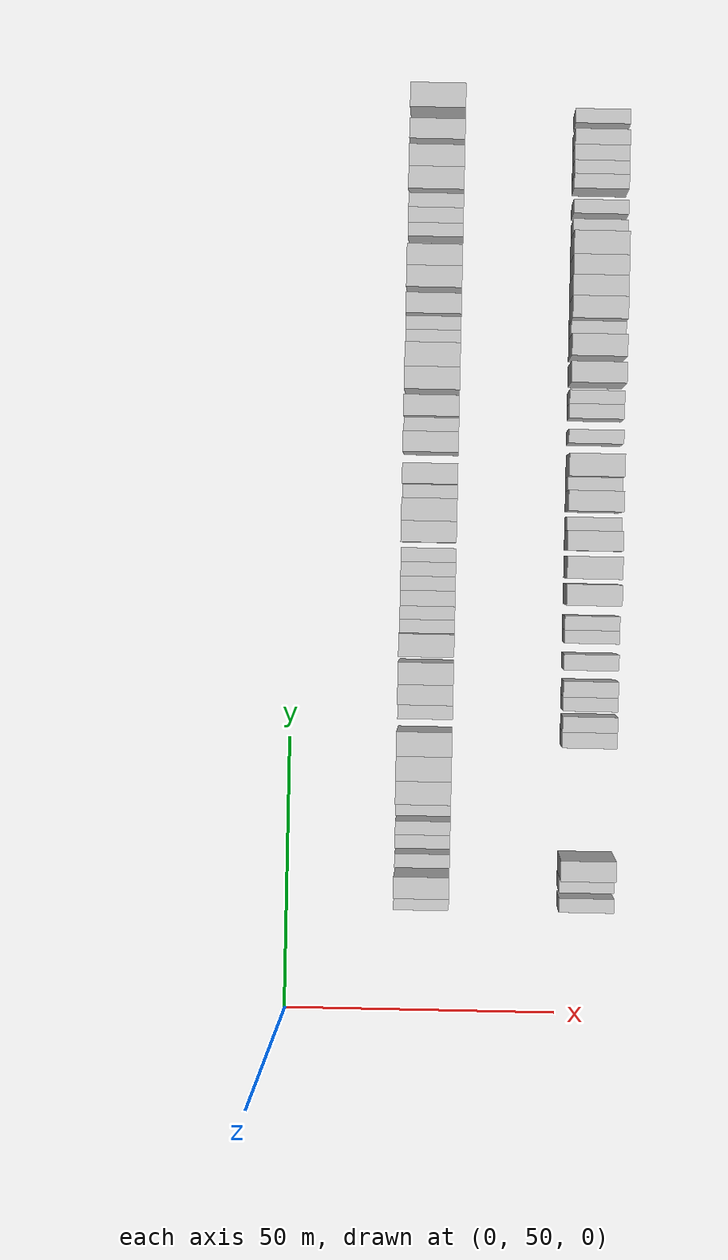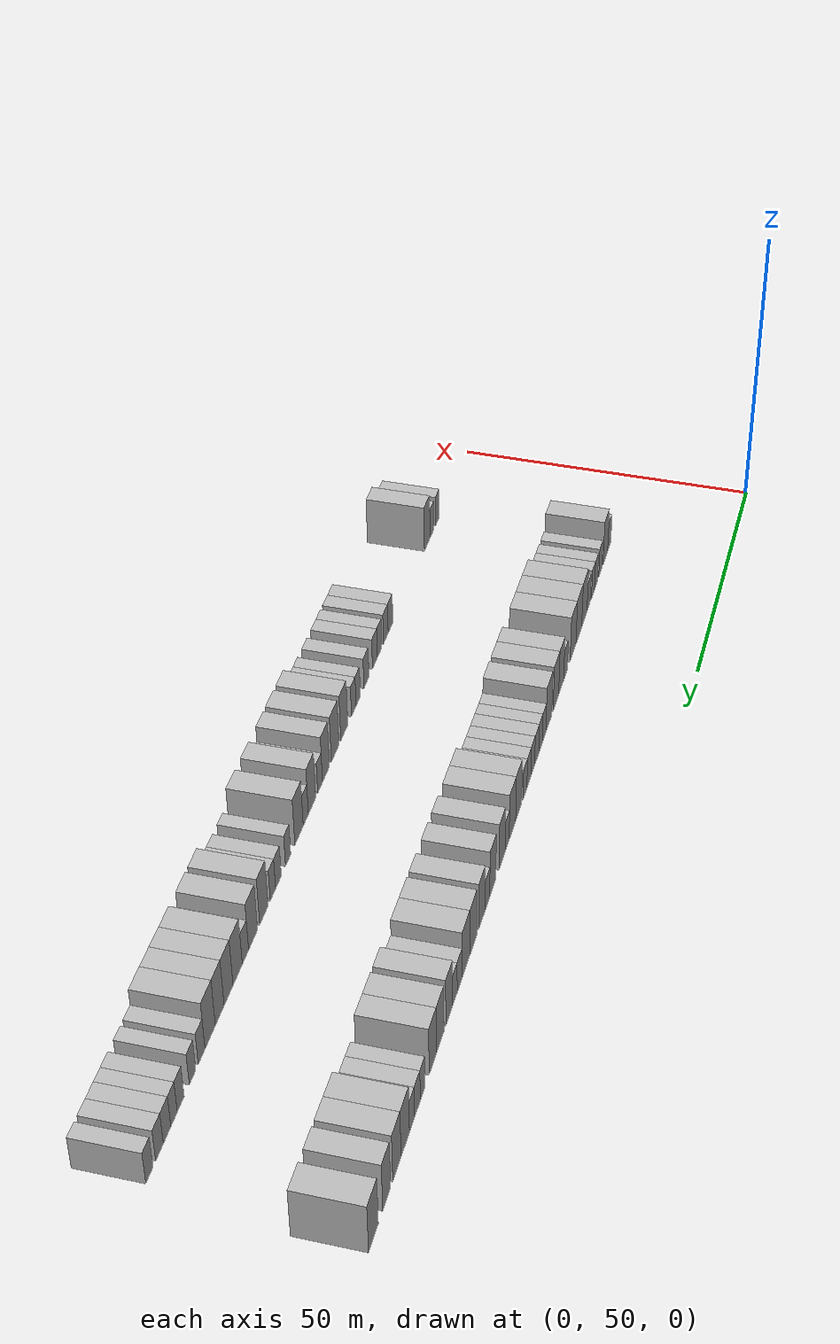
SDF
<sdf version="1.6">
 <world name="default">
  <model name="building_137">
   <static>1</static>
   <pose>25.0000 71.2663 0 0.000000 0.000000 0.000000</pose>
   <link name="link">
    <pose>0 0 3.00 0 0 0</pose>
    <collision name="collision"><geometry><box><size>10.0000 2.7527 6.0000</size></box></geometry></collision>
    <visual name="visual">
     <cast_shadows>0</cast_shadows>
     <geometry><box><size>10.0000 2.7527 6.0000</size></box></geometry>
     <material>
      <script>
       <uri>model://HANNAS_wall/materials/scripts</uri>
       <uri>model://HANNAS_wall/materials/textures</uri>
       <name>vrc/HANNAS_wall</name>
      </script>
     </material>
    </visual>
   </link>
  </model>
  <model name="building_138">
   <static>1</static>
   <pose>25.0000 74.5992 0 0.000000 0.000000 0.000000</pose>
   <link name="link">
    <pose>0 0 4.50 0 0 0</pose>
    <collision name="collision"><geometry><box><size>10.0000 3.9130 9.0000</size></box></geometry></collision>
    <visual name="visual">
     <cast_shadows>0</cast_shadows>
     <geometry><box><size>10.0000 3.9130 9.0000</size></box></geometry>
     <material>
      <script>
       <uri>model://HANNAS_wall/materials/scripts</uri>
       <uri>model://HANNAS_wall/materials/textures</uri>
       <name>vrc/HANNAS_wall</name>
      </script>
     </material>
    </visual>
   </link>
  </model>
  <model name="building_139">
   <static>1</static>
   <pose>25.0000 78.8195 0 0.000000 0.000000 0.000000</pose>
   <link name="link">
    <pose>0 0 3.00 0 0 0</pose>
    <collision name="collision"><geometry><box><size>10.0000 2.5276 6.0000</size></box></geometry></collision>
    <visual name="visual">
     <cast_shadows>0</cast_shadows>
     <geometry><box><size>10.0000 2.5276 6.0000</size></box></geometry>
     <material>
      <script>
       <uri>model://HANNAS_wall/materials/scripts</uri>
       <uri>model://HANNAS_wall/materials/textures</uri>
       <name>vrc/HANNAS_wall</name>
      </script>
     </material>
    </visual>
   </link>
  </model>
  <model name="building_140">
   <static>1</static>
   <pose>25.0000 82.3091 0 0.000000 0.000000 0.000000</pose>
   <link name="link">
    <pose>0 0 3.00 0 0 0</pose>
    <collision name="collision"><geometry><box><size>10.0000 2.4515 6.0000</size></box></geometry></collision>
    <visual name="visual">
     <cast_shadows>0</cast_shadows>
     <geometry><box><size>10.0000 2.4515 6.0000</size></box></geometry>
     <material>
      <script>
       <uri>model://HANNAS_wall/materials/scripts</uri>
       <uri>model://HANNAS_wall/materials/textures</uri>
       <name>vrc/HANNAS_wall</name>
      </script>
     </material>
    </visual>
   </link>
  </model>
  <model name="building_141">
   <static>1</static>
   <pose>25.0000 84.7775 0 0.000000 0.000000 0.000000</pose>
   <link name="link">
    <pose>0 0 3.00 0 0 0</pose>
    <collision name="collision"><geometry><box><size>10.0000 2.4853 6.0000</size></box></geometry></collision>
    <visual name="visual">
     <cast_shadows>0</cast_shadows>
     <geometry><box><size>10.0000 2.4853 6.0000</size></box></geometry>
     <material>
      <script>
       <uri>model://HANNAS_wall/materials/scripts</uri>
       <uri>model://HANNAS_wall/materials/textures</uri>
       <name>vrc/HANNAS_wall</name>
      </script>
     </material>
    </visual>
   </link>
  </model>
  <model name="building_142">
   <static>1</static>
   <pose>25.0000 88.2631 0 0.000000 0.000000 0.000000</pose>
   <link name="link">
    <pose>0 0 3.00 0 0 0</pose>
    <collision name="collision"><geometry><box><size>10.0000 2.4859 6.0000</size></box></geometry></collision>
    <visual name="visual">
     <cast_shadows>0</cast_shadows>
     <geometry><box><size>10.0000 2.4859 6.0000</size></box></geometry>
     <material>
      <script>
       <uri>model://HANNAS_wall/materials/scripts</uri>
       <uri>model://HANNAS_wall/materials/textures</uri>
       <name>vrc/HANNAS_wall</name>
      </script>
     </material>
    </visual>
   </link>
  </model>
  <model name="building_143">
   <static>1</static>
   <pose>25.0000 91.5950 0 0.000000 0.000000 0.000000</pose>
   <link name="link">
    <pose>0 0 4.50 0 0 0</pose>
    <collision name="collision"><geometry><box><size>10.0000 4.1779 9.0000</size></box></geometry></collision>
    <visual name="visual">
     <cast_shadows>0</cast_shadows>
     <geometry><box><size>10.0000 4.1779 9.0000</size></box></geometry>
     <material>
      <script>
       <uri>model://HANNAS_wall/materials/scripts</uri>
       <uri>model://HANNAS_wall/materials/textures</uri>
       <name>vrc/HANNAS_wall</name>
      </script>
     </material>
    </visual>
   </link>
  </model>
  <model name="building_144">
   <static>1</static>
   <pose>25.0000 95.9131 0 0.000000 0.000000 0.000000</pose>
   <link name="link">
    <pose>0 0 4.50 0 0 0</pose>
    <collision name="collision"><geometry><box><size>10.0000 4.4583 9.0000</size></box></geometry></collision>
    <visual name="visual">
     <cast_shadows>0</cast_shadows>
     <geometry><box><size>10.0000 4.4583 9.0000</size></box></geometry>
     <material>
      <script>
       <uri>model://HANNAS_wall/materials/scripts</uri>
       <uri>model://HANNAS_wall/materials/textures</uri>
       <name>vrc/HANNAS_wall</name>
      </script>
     </material>
    </visual>
   </link>
  </model>
  <model name="building_145">
   <static>1</static>
   <pose>25.0000 100.3467 0 0.000000 0.000000 0.000000</pose>
   <link name="link">
    <pose>0 0 4.50 0 0 0</pose>
    <collision name="collision"><geometry><box><size>10.0000 4.4088 9.0000</size></box></geometry></collision>
    <visual name="visual">
     <cast_shadows>0</cast_shadows>
     <geometry><box><size>10.0000 4.4088 9.0000</size></box></geometry>
     <material>
      <script>
       <uri>model://HANNAS_wall/materials/scripts</uri>
       <uri>model://HANNAS_wall/materials/textures</uri>
       <name>vrc/HANNAS_wall</name>
      </script>
     </material>
    </visual>
   </link>
  </model>
  <model name="building_146">
   <static>1</static>
   <pose>25.0000 105.9665 0 0.000000 0.000000 0.000000</pose>
   <link name="link">
    <pose>0 0 3.00 0 0 0</pose>
    <collision name="collision"><geometry><box><size>10.0000 2.8309 6.0000</size></box></geometry></collision>
    <visual name="visual">
     <cast_shadows>0</cast_shadows>
     <geometry><box><size>10.0000 2.8309 6.0000</size></box></geometry>
     <material>
      <script>
       <uri>model://HANNAS_wall/materials/scripts</uri>
       <uri>model://HANNAS_wall/materials/textures</uri>
       <name>vrc/HANNAS_wall</name>
      </script>
     </material>
    </visual>
   </link>
  </model>
  <model name="building_147">
   <static>1</static>
   <pose>25.0000 109.1968 0 0.000000 0.000000 0.000000</pose>
   <link name="link">
    <pose>0 0 4.50 0 0 0</pose>
    <collision name="collision"><geometry><box><size>10.0000 3.6296 9.0000</size></box></geometry></collision>
    <visual name="visual">
     <cast_shadows>0</cast_shadows>
     <geometry><box><size>10.0000 3.6296 9.0000</size></box></geometry>
     <material>
      <script>
       <uri>model://HANNAS_wall/materials/scripts</uri>
       <uri>model://HANNAS_wall/materials/textures</uri>
       <name>vrc/HANNAS_wall</name>
      </script>
     </material>
    </visual>
   </link>
  </model>
  <model name="building_148">
   <static>1</static>
   <pose>25.0000 113.0100 0 0.000000 0.000000 0.000000</pose>
   <link name="link">
    <pose>0 0 4.50 0 0 0</pose>
    <collision name="collision"><geometry><box><size>10.0000 3.9967 9.0000</size></box></geometry></collision>
    <visual name="visual">
     <cast_shadows>0</cast_shadows>
     <geometry><box><size>10.0000 3.9967 9.0000</size></box></geometry>
     <material>
      <script>
       <uri>model://HANNAS_wall/materials/scripts</uri>
       <uri>model://HANNAS_wall/materials/textures</uri>
       <name>vrc/HANNAS_wall</name>
      </script>
     </material>
    </visual>
   </link>
  </model>
  <model name="building_149">
   <static>1</static>
   <pose>25.0000 118.0663 0 0.000000 0.000000 0.000000</pose>
   <link name="link">
    <pose>0 0 4.50 0 0 0</pose>
    <collision name="collision"><geometry><box><size>10.0000 4.1161 9.0000</size></box></geometry></collision>
    <visual name="visual">
     <cast_shadows>0</cast_shadows>
     <geometry><box><size>10.0000 4.1161 9.0000</size></box></geometry>
     <material>
      <script>
       <uri>model://HANNAS_wall/materials/scripts</uri>
       <uri>model://HANNAS_wall/materials/textures</uri>
       <name>vrc/HANNAS_wall</name>
      </script>
     </material>
    </visual>
   </link>
  </model>
  <model name="building_150">
   <static>1</static>
   <pose>25.0000 121.3572 0 0.000000 0.000000 0.000000</pose>
   <link name="link">
    <pose>0 0 3.00 0 0 0</pose>
    <collision name="collision"><geometry><box><size>10.0000 2.4656 6.0000</size></box></geometry></collision>
    <visual name="visual">
     <cast_shadows>0</cast_shadows>
     <geometry><box><size>10.0000 2.4656 6.0000</size></box></geometry>
     <material>
      <script>
       <uri>model://HANNAS_wall/materials/scripts</uri>
       <uri>model://HANNAS_wall/materials/textures</uri>
       <name>vrc/HANNAS_wall</name>
      </script>
     </material>
    </visual>
   </link>
  </model>
  <model name="building_151">
   <static>1</static>
   <pose>25.0000 123.8138 0 0.000000 0.000000 0.000000</pose>
   <link name="link">
    <pose>0 0 3.00 0 0 0</pose>
    <collision name="collision"><geometry><box><size>10.0000 2.4477 6.0000</size></box></geometry></collision>
    <visual name="visual">
     <cast_shadows>0</cast_shadows>
     <geometry><box><size>10.0000 2.4477 6.0000</size></box></geometry>
     <material>
      <script>
       <uri>model://HANNAS_wall/materials/scripts</uri>
       <uri>model://HANNAS_wall/materials/textures</uri>
       <name>vrc/HANNAS_wall</name>
      </script>
     </material>
    </visual>
   </link>
  </model>
  <model name="building_152">
   <static>1</static>
   <pose>25.0000 126.4499 0 0.000000 0.000000 0.000000</pose>
   <link name="link">
    <pose>0 0 3.00 0 0 0</pose>
    <collision name="collision"><geometry><box><size>10.0000 2.8245 6.0000</size></box></geometry></collision>
    <visual name="visual">
     <cast_shadows>0</cast_shadows>
     <geometry><box><size>10.0000 2.8245 6.0000</size></box></geometry>
     <material>
      <script>
       <uri>model://HANNAS_wall/materials/scripts</uri>
       <uri>model://HANNAS_wall/materials/textures</uri>
       <name>vrc/HANNAS_wall</name>
      </script>
     </material>
    </visual>
   </link>
  </model>
  <model name="building_153">
   <static>1</static>
   <pose>25.0000 129.1567 0 0.000000 0.000000 0.000000</pose>
   <link name="link">
    <pose>0 0 3.00 0 0 0</pose>
    <collision name="collision"><geometry><box><size>10.0000 2.5892 6.0000</size></box></geometry></collision>
    <visual name="visual">
     <cast_shadows>0</cast_shadows>
     <geometry><box><size>10.0000 2.5892 6.0000</size></box></geometry>
     <material>
      <script>
       <uri>model://HANNAS_wall/materials/scripts</uri>
       <uri>model://HANNAS_wall/materials/textures</uri>
       <name>vrc/HANNAS_wall</name>
      </script>
     </material>
    </visual>
   </link>
  </model>
  <model name="building_154">
   <static>1</static>
   <pose>25.0000 131.7491 0 0.000000 0.000000 0.000000</pose>
   <link name="link">
    <pose>0 0 3.00 0 0 0</pose>
    <collision name="collision"><geometry><box><size>10.0000 2.5955 6.0000</size></box></geometry></collision>
    <visual name="visual">
     <cast_shadows>0</cast_shadows>
     <geometry><box><size>10.0000 2.5955 6.0000</size></box></geometry>
     <material>
      <script>
       <uri>model://HANNAS_wall/materials/scripts</uri>
       <uri>model://HANNAS_wall/materials/textures</uri>
       <name>vrc/HANNAS_wall</name>
      </script>
     </material>
    </visual>
   </link>
  </model>
  <model name="building_155">
   <static>1</static>
   <pose>25.0000 134.3246 0 0.000000 0.000000 0.000000</pose>
   <link name="link">
    <pose>0 0 3.00 0 0 0</pose>
    <collision name="collision"><geometry><box><size>10.0000 2.5557 6.0000</size></box></geometry></collision>
    <visual name="visual">
     <cast_shadows>0</cast_shadows>
     <geometry><box><size>10.0000 2.5557 6.0000</size></box></geometry>
     <material>
      <script>
       <uri>model://HANNAS_wall/materials/scripts</uri>
       <uri>model://HANNAS_wall/materials/textures</uri>
       <name>vrc/HANNAS_wall</name>
      </script>
     </material>
    </visual>
   </link>
  </model>
  <model name="building_156">
   <static>1</static>
   <pose>25.0000 138.5200 0 0.000000 0.000000 0.000000</pose>
   <link name="link">
    <pose>0 0 4.50 0 0 0</pose>
    <collision name="collision"><geometry><box><size>10.0000 3.8351 9.0000</size></box></geometry></collision>
    <visual name="visual">
     <cast_shadows>0</cast_shadows>
     <geometry><box><size>10.0000 3.8351 9.0000</size></box></geometry>
     <material>
      <script>
       <uri>model://HANNAS_wall/materials/scripts</uri>
       <uri>model://HANNAS_wall/materials/textures</uri>
       <name>vrc/HANNAS_wall</name>
      </script>
     </material>
    </visual>
   </link>
  </model>
  <model name="building_157">
   <static>1</static>
   <pose>25.0000 142.4912 0 0.000000 0.000000 0.000000</pose>
   <link name="link">
    <pose>0 0 4.50 0 0 0</pose>
    <collision name="collision"><geometry><box><size>10.0000 4.1074 9.0000</size></box></geometry></collision>
    <visual name="visual">
     <cast_shadows>0</cast_shadows>
     <geometry><box><size>10.0000 4.1074 9.0000</size></box></geometry>
     <material>
      <script>
       <uri>model://HANNAS_wall/materials/scripts</uri>
       <uri>model://HANNAS_wall/materials/textures</uri>
       <name>vrc/HANNAS_wall</name>
      </script>
     </material>
    </visual>
   </link>
  </model>
  <model name="building_158">
   <static>1</static>
   <pose>25.0000 145.8182 0 0.000000 0.000000 0.000000</pose>
   <link name="link">
    <pose>0 0 3.00 0 0 0</pose>
    <collision name="collision"><geometry><box><size>10.0000 2.5465 6.0000</size></box></geometry></collision>
    <visual name="visual">
     <cast_shadows>0</cast_shadows>
     <geometry><box><size>10.0000 2.5465 6.0000</size></box></geometry>
     <material>
      <script>
       <uri>model://HANNAS_wall/materials/scripts</uri>
       <uri>model://HANNAS_wall/materials/textures</uri>
       <name>vrc/HANNAS_wall</name>
      </script>
     </material>
    </visual>
   </link>
  </model>
  <model name="building_159">
   <static>1</static>
   <pose>25.0000 148.9479 0 0.000000 0.000000 0.000000</pose>
   <link name="link">
    <pose>0 0 4.50 0 0 0</pose>
    <collision name="collision"><geometry><box><size>10.0000 3.7130 9.0000</size></box></geometry></collision>
    <visual name="visual">
     <cast_shadows>0</cast_shadows>
     <geometry><box><size>10.0000 3.7130 9.0000</size></box></geometry>
     <material>
      <script>
       <uri>model://HANNAS_wall/materials/scripts</uri>
       <uri>model://HANNAS_wall/materials/textures</uri>
       <name>vrc/HANNAS_wall</name>
      </script>
     </material>
    </visual>
   </link>
  </model>
  <model name="building_160">
   <static>1</static>
   <pose>25.0000 154.6547 0 0.000000 0.000000 0.000000</pose>
   <link name="link">
    <pose>0 0 4.50 0 0 0</pose>
    <collision name="collision"><geometry><box><size>10.0000 3.7006 9.0000</size></box></geometry></collision>
    <visual name="visual">
     <cast_shadows>0</cast_shadows>
     <geometry><box><size>10.0000 3.7006 9.0000</size></box></geometry>
     <material>
      <script>
       <uri>model://HANNAS_wall/materials/scripts</uri>
       <uri>model://HANNAS_wall/materials/textures</uri>
       <name>vrc/HANNAS_wall</name>
      </script>
     </material>
    </visual>
   </link>
  </model>
  <model name="building_161">
   <static>1</static>
   <pose>25.0000 157.8823 0 0.000000 0.000000 0.000000</pose>
   <link name="link">
    <pose>0 0 3.00 0 0 0</pose>
    <collision name="collision"><geometry><box><size>10.0000 2.7547 6.0000</size></box></geometry></collision>
    <visual name="visual">
     <cast_shadows>0</cast_shadows>
     <geometry><box><size>10.0000 2.7547 6.0000</size></box></geometry>
     <material>
      <script>
       <uri>model://HANNAS_wall/materials/scripts</uri>
       <uri>model://HANNAS_wall/materials/textures</uri>
       <name>vrc/HANNAS_wall</name>
      </script>
     </material>
    </visual>
   </link>
  </model>
  <model name="building_162">
   <static>1</static>
   <pose>25.0000 161.1582 0 0.000000 0.000000 0.000000</pose>
   <link name="link">
    <pose>0 0 4.50 0 0 0</pose>
    <collision name="collision"><geometry><box><size>10.0000 3.7971 9.0000</size></box></geometry></collision>
    <visual name="visual">
     <cast_shadows>0</cast_shadows>
     <geometry><box><size>10.0000 3.7971 9.0000</size></box></geometry>
     <material>
      <script>
       <uri>model://HANNAS_wall/materials/scripts</uri>
       <uri>model://HANNAS_wall/materials/textures</uri>
       <name>vrc/HANNAS_wall</name>
      </script>
     </material>
    </visual>
   </link>
  </model>
  <model name="building_163">
   <static>1</static>
   <pose>25.0000 166.0961 0 0.000000 0.000000 0.000000</pose>
   <link name="link">
    <pose>0 0 4.50 0 0 0</pose>
    <collision name="collision"><geometry><box><size>10.0000 4.0788 9.0000</size></box></geometry></collision>
    <visual name="visual">
     <cast_shadows>0</cast_shadows>
     <geometry><box><size>10.0000 4.0788 9.0000</size></box></geometry>
     <material>
      <script>
       <uri>model://HANNAS_wall/materials/scripts</uri>
       <uri>model://HANNAS_wall/materials/textures</uri>
       <name>vrc/HANNAS_wall</name>
      </script>
     </material>
    </visual>
   </link>
  </model>
  <model name="building_164">
   <static>1</static>
   <pose>25.0000 170.3161 0 0.000000 0.000000 0.000000</pose>
   <link name="link">
    <pose>0 0 4.50 0 0 0</pose>
    <collision name="collision"><geometry><box><size>10.0000 4.3612 9.0000</size></box></geometry></collision>
    <visual name="visual">
     <cast_shadows>0</cast_shadows>
     <geometry><box><size>10.0000 4.3612 9.0000</size></box></geometry>
     <material>
      <script>
       <uri>model://HANNAS_wall/materials/scripts</uri>
       <uri>model://HANNAS_wall/materials/textures</uri>
       <name>vrc/HANNAS_wall</name>
      </script>
     </material>
    </visual>
   </link>
  </model>
  <model name="building_165">
   <static>1</static>
   <pose>25.0000 173.8429 0 0.000000 0.000000 0.000000</pose>
   <link name="link">
    <pose>0 0 3.00 0 0 0</pose>
    <collision name="collision"><geometry><box><size>10.0000 2.6922 6.0000</size></box></geometry></collision>
    <visual name="visual">
     <cast_shadows>0</cast_shadows>
     <geometry><box><size>10.0000 2.6922 6.0000</size></box></geometry>
     <material>
      <script>
       <uri>model://HANNAS_wall/materials/scripts</uri>
       <uri>model://HANNAS_wall/materials/textures</uri>
       <name>vrc/HANNAS_wall</name>
      </script>
     </material>
    </visual>
   </link>
  </model>
  <model name="building_166">
   <static>1</static>
   <pose>25.0000 176.4259 0 0.000000 0.000000 0.000000</pose>
   <link name="link">
    <pose>0 0 3.00 0 0 0</pose>
    <collision name="collision"><geometry><box><size>10.0000 2.4738 6.0000</size></box></geometry></collision>
    <visual name="visual">
     <cast_shadows>0</cast_shadows>
     <geometry><box><size>10.0000 2.4738 6.0000</size></box></geometry>
     <material>
      <script>
       <uri>model://HANNAS_wall/materials/scripts</uri>
       <uri>model://HANNAS_wall/materials/textures</uri>
       <name>vrc/HANNAS_wall</name>
      </script>
     </material>
    </visual>
   </link>
  </model>
  <model name="building_167">
   <static>1</static>
   <pose>25.0000 179.5125 0 0.000000 0.000000 0.000000</pose>
   <link name="link">
    <pose>0 0 4.50 0 0 0</pose>
    <collision name="collision"><geometry><box><size>10.0000 3.6995 9.0000</size></box></geometry></collision>
    <visual name="visual">
     <cast_shadows>0</cast_shadows>
     <geometry><box><size>10.0000 3.6995 9.0000</size></box></geometry>
     <material>
      <script>
       <uri>model://HANNAS_wall/materials/scripts</uri>
       <uri>model://HANNAS_wall/materials/textures</uri>
       <name>vrc/HANNAS_wall</name>
      </script>
     </material>
    </visual>
   </link>
  </model>
  <model name="building_168">
   <static>1</static>
   <pose>25.0000 184.3082 0 0.000000 0.000000 0.000000</pose>
   <link name="link">
    <pose>0 0 4.50 0 0 0</pose>
    <collision name="collision"><geometry><box><size>10.0000 3.8920 9.0000</size></box></geometry></collision>
    <visual name="visual">
     <cast_shadows>0</cast_shadows>
     <geometry><box><size>10.0000 3.8920 9.0000</size></box></geometry>
     <material>
      <script>
       <uri>model://HANNAS_wall/materials/scripts</uri>
       <uri>model://HANNAS_wall/materials/textures</uri>
       <name>vrc/HANNAS_wall</name>
      </script>
     </material>
    </visual>
   </link>
  </model>
  <model name="building_169">
   <static>1</static>
   <pose>25.0000 188.1776 0 0.000000 0.000000 0.000000</pose>
   <link name="link">
    <pose>0 0 4.50 0 0 0</pose>
    <collision name="collision"><geometry><box><size>10.0000 3.8467 9.0000</size></box></geometry></collision>
    <visual name="visual">
     <cast_shadows>0</cast_shadows>
     <geometry><box><size>10.0000 3.8467 9.0000</size></box></geometry>
     <material>
      <script>
       <uri>model://HANNAS_wall/materials/scripts</uri>
       <uri>model://HANNAS_wall/materials/textures</uri>
       <name>vrc/HANNAS_wall</name>
      </script>
     </material>
    </visual>
   </link>
  </model>
  <model name="building_170">
   <static>1</static>
   <pose>25.0000 193.3418 0 0.000000 0.000000 0.000000</pose>
   <link name="link">
    <pose>0 0 3.00 0 0 0</pose>
    <collision name="collision"><geometry><box><size>10.0000 2.4817 6.0000</size></box></geometry></collision>
    <visual name="visual">
     <cast_shadows>0</cast_shadows>
     <geometry><box><size>10.0000 2.4817 6.0000</size></box></geometry>
     <material>
      <script>
       <uri>model://HANNAS_wall/materials/scripts</uri>
       <uri>model://HANNAS_wall/materials/textures</uri>
       <name>vrc/HANNAS_wall</name>
      </script>
     </material>
    </visual>
   </link>
  </model>
  <model name="building_171">
   <static>1</static>
   <pose>25.0000 195.9893 0 0.000000 0.000000 0.000000</pose>
   <link name="link">
    <pose>0 0 3.00 0 0 0</pose>
    <collision name="collision"><geometry><box><size>10.0000 2.8132 6.0000</size></box></geometry></collision>
    <visual name="visual">
     <cast_shadows>0</cast_shadows>
     <geometry><box><size>10.0000 2.8132 6.0000</size></box></geometry>
     <material>
      <script>
       <uri>model://HANNAS_wall/materials/scripts</uri>
       <uri>model://HANNAS_wall/materials/textures</uri>
       <name>vrc/HANNAS_wall</name>
      </script>
     </material>
    </visual>
   </link>
  </model>
  <model name="building_172">
   <static>1</static>
   <pose>25.0000 198.6834 0 0.000000 0.000000 0.000000</pose>
   <link name="link">
    <pose>0 0 3.00 0 0 0</pose>
    <collision name="collision"><geometry><box><size>10.0000 2.5750 6.0000</size></box></geometry></collision>
    <visual name="visual">
     <cast_shadows>0</cast_shadows>
     <geometry><box><size>10.0000 2.5750 6.0000</size></box></geometry>
     <material>
      <script>
       <uri>model://HANNAS_wall/materials/scripts</uri>
       <uri>model://HANNAS_wall/materials/textures</uri>
       <name>vrc/HANNAS_wall</name>
      </script>
     </material>
    </visual>
   </link>
  </model>
  <model name="building_173">
   <static>1</static>
   <pose>25.0000 201.9945 0 0.000000 0.000000 0.000000</pose>
   <link name="link">
    <pose>0 0 4.50 0 0 0</pose>
    <collision name="collision"><geometry><box><size>10.0000 4.0472 9.0000</size></box></geometry></collision>
    <visual name="visual">
     <cast_shadows>0</cast_shadows>
     <geometry><box><size>10.0000 4.0472 9.0000</size></box></geometry>
     <material>
      <script>
       <uri>model://HANNAS_wall/materials/scripts</uri>
       <uri>model://HANNAS_wall/materials/textures</uri>
       <name>vrc/HANNAS_wall</name>
      </script>
     </material>
    </visual>
   </link>
  </model>
  <model name="building_174">
   <static>1</static>
   <pose>25.0000 205.9882 0 0.000000 0.000000 0.000000</pose>
   <link name="link">
    <pose>0 0 4.50 0 0 0</pose>
    <collision name="collision"><geometry><box><size>10.0000 3.9404 9.0000</size></box></geometry></collision>
    <visual name="visual">
     <cast_shadows>0</cast_shadows>
     <geometry><box><size>10.0000 3.9404 9.0000</size></box></geometry>
     <material>
      <script>
       <uri>model://HANNAS_wall/materials/scripts</uri>
       <uri>model://HANNAS_wall/materials/textures</uri>
       <name>vrc/HANNAS_wall</name>
      </script>
     </material>
    </visual>
   </link>
  </model>
  <model name="building_175">
   <static>1</static>
   <pose>25.0000 210.7847 0 0.000000 0.000000 0.000000</pose>
   <link name="link">
    <pose>0 0 4.50 0 0 0</pose>
    <collision name="collision"><geometry><box><size>10.0000 3.6526 9.0000</size></box></geometry></collision>
    <visual name="visual">
     <cast_shadows>0</cast_shadows>
     <geometry><box><size>10.0000 3.6526 9.0000</size></box></geometry>
     <material>
      <script>
       <uri>model://HANNAS_wall/materials/scripts</uri>
       <uri>model://HANNAS_wall/materials/textures</uri>
       <name>vrc/HANNAS_wall</name>
      </script>
     </material>
    </visual>
   </link>
  </model>
  <model name="building_176">
   <static>1</static>
   <pose>25.0000 216.8150 0 0.000000 0.000000 0.000000</pose>
   <link name="link">
    <pose>0 0 4.50 0 0 0</pose>
    <collision name="collision"><geometry><box><size>10.0000 4.4080 9.0000</size></box></geometry></collision>
    <visual name="visual">
     <cast_shadows>0</cast_shadows>
     <geometry><box><size>10.0000 4.4080 9.0000</size></box></geometry>
     <material>
      <script>
       <uri>model://HANNAS_wall/materials/scripts</uri>
       <uri>model://HANNAS_wall/materials/textures</uri>
       <name>vrc/HANNAS_wall</name>
      </script>
     </material>
    </visual>
   </link>
  </model>
  <model name="building_382">
   <static>1</static>
   <pose>55.0000 71.3485 0 0.000000 0.000000 0.000000</pose>
   <link name="link">
    <pose>0 0 3.00 0 0 0</pose>
    <collision name="collision"><geometry><box><size>10.0000 2.5584 6.0000</size></box></geometry></collision>
    <visual name="visual">
     <cast_shadows>0</cast_shadows>
     <geometry><box><size>10.0000 2.5584 6.0000</size></box></geometry>
     <material>
      <script>
       <uri>model://HANNAS_wall/materials/scripts</uri>
       <uri>model://HANNAS_wall/materials/textures</uri>
       <name>vrc/HANNAS_wall</name>
      </script>
     </material>
    </visual>
   </link>
  </model>
  <model name="building_383">
   <static>1</static>
   <pose>55.0000 74.9786 0 0.000000 0.000000 0.000000</pose>
   <link name="link">
    <pose>0 0 3.00 0 0 0</pose>
    <collision name="collision"><geometry><box><size>10.0000 2.7017 6.0000</size></box></geometry></collision>
    <visual name="visual">
     <cast_shadows>0</cast_shadows>
     <geometry><box><size>10.0000 2.7017 6.0000</size></box></geometry>
     <material>
      <script>
       <uri>model://HANNAS_wall/materials/scripts</uri>
       <uri>model://HANNAS_wall/materials/textures</uri>
       <name>vrc/HANNAS_wall</name>
      </script>
     </material>
    </visual>
   </link>
  </model>
  <model name="building_384">
   <static>1</static>
   <pose>55.0000 78.1705 0 0.000000 0.000000 0.000000</pose>
   <link name="link">
    <pose>0 0 4.50 0 0 0</pose>
    <collision name="collision"><geometry><box><size>10.0000 3.6822 9.0000</size></box></geometry></collision>
    <visual name="visual">
     <cast_shadows>0</cast_shadows>
     <geometry><box><size>10.0000 3.6822 9.0000</size></box></geometry>
     <material>
      <script>
       <uri>model://HANNAS_wall/materials/scripts</uri>
       <uri>model://HANNAS_wall/materials/textures</uri>
       <name>vrc/HANNAS_wall</name>
      </script>
     </material>
    </visual>
   </link>
  </model>
  <model name="building_385">
   <static>1</static>
   <pose>55.0000 101.3045 0 0.000000 0.000000 0.000000</pose>
   <link name="link">
    <pose>0 0 3.00 0 0 0</pose>
    <collision name="collision"><geometry><box><size>10.0000 2.8619 6.0000</size></box></geometry></collision>
    <visual name="visual">
     <cast_shadows>0</cast_shadows>
     <geometry><box><size>10.0000 2.8619 6.0000</size></box></geometry>
     <material>
      <script>
       <uri>model://HANNAS_wall/materials/scripts</uri>
       <uri>model://HANNAS_wall/materials/textures</uri>
       <name>vrc/HANNAS_wall</name>
      </script>
     </material>
    </visual>
   </link>
  </model>
  <model name="building_386">
   <static>1</static>
   <pose>55.0000 104.1477 0 0.000000 0.000000 0.000000</pose>
   <link name="link">
    <pose>0 0 3.00 0 0 0</pose>
    <collision name="collision"><geometry><box><size>10.0000 2.8246 6.0000</size></box></geometry></collision>
    <visual name="visual">
     <cast_shadows>0</cast_shadows>
     <geometry><box><size>10.0000 2.8246 6.0000</size></box></geometry>
     <material>
      <script>
       <uri>model://HANNAS_wall/materials/scripts</uri>
       <uri>model://HANNAS_wall/materials/textures</uri>
       <name>vrc/HANNAS_wall</name>
      </script>
     </material>
    </visual>
   </link>
  </model>
  <model name="building_387">
   <static>1</static>
   <pose>55.0000 107.8328 0 0.000000 0.000000 0.000000</pose>
   <link name="link">
    <pose>0 0 3.00 0 0 0</pose>
    <collision name="collision"><geometry><box><size>10.0000 2.5456 6.0000</size></box></geometry></collision>
    <visual name="visual">
     <cast_shadows>0</cast_shadows>
     <geometry><box><size>10.0000 2.5456 6.0000</size></box></geometry>
     <material>
      <script>
       <uri>model://HANNAS_wall/materials/scripts</uri>
       <uri>model://HANNAS_wall/materials/textures</uri>
       <name>vrc/HANNAS_wall</name>
      </script>
     </material>
    </visual>
   </link>
  </model>
  <model name="building_388">
   <static>1</static>
   <pose>55.0000 110.5466 0 0.000000 0.000000 0.000000</pose>
   <link name="link">
    <pose>0 0 3.00 0 0 0</pose>
    <collision name="collision"><geometry><box><size>10.0000 2.8819 6.0000</size></box></geometry></collision>
    <visual name="visual">
     <cast_shadows>0</cast_shadows>
     <geometry><box><size>10.0000 2.8819 6.0000</size></box></geometry>
     <material>
      <script>
       <uri>model://HANNAS_wall/materials/scripts</uri>
       <uri>model://HANNAS_wall/materials/textures</uri>
       <name>vrc/HANNAS_wall</name>
      </script>
     </material>
    </visual>
   </link>
  </model>
  <model name="building_389">
   <static>1</static>
   <pose>55.0000 115.4321 0 0.000000 0.000000 0.000000</pose>
   <link name="link">
    <pose>0 0 3.00 0 0 0</pose>
    <collision name="collision"><geometry><box><size>10.0000 2.8892 6.0000</size></box></geometry></collision>
    <visual name="visual">
     <cast_shadows>0</cast_shadows>
     <geometry><box><size>10.0000 2.8892 6.0000</size></box></geometry>
     <material>
      <script>
       <uri>model://HANNAS_wall/materials/scripts</uri>
       <uri>model://HANNAS_wall/materials/textures</uri>
       <name>vrc/HANNAS_wall</name>
      </script>
     </material>
    </visual>
   </link>
  </model>
  <model name="building_390">
   <static>1</static>
   <pose>55.0000 120.0790 0 0.000000 0.000000 0.000000</pose>
   <link name="link">
    <pose>0 0 3.00 0 0 0</pose>
    <collision name="collision"><geometry><box><size>10.0000 2.4045 6.0000</size></box></geometry></collision>
    <visual name="visual">
     <cast_shadows>0</cast_shadows>
     <geometry><box><size>10.0000 2.4045 6.0000</size></box></geometry>
     <material>
      <script>
       <uri>model://HANNAS_wall/materials/scripts</uri>
       <uri>model://HANNAS_wall/materials/textures</uri>
       <name>vrc/HANNAS_wall</name>
      </script>
     </material>
    </visual>
   </link>
  </model>
  <model name="building_391">
   <static>1</static>
   <pose>55.0000 122.5642 0 0.000000 0.000000 0.000000</pose>
   <link name="link">
    <pose>0 0 3.00 0 0 0</pose>
    <collision name="collision"><geometry><box><size>10.0000 2.5658 6.0000</size></box></geometry></collision>
    <visual name="visual">
     <cast_shadows>0</cast_shadows>
     <geometry><box><size>10.0000 2.5658 6.0000</size></box></geometry>
     <material>
      <script>
       <uri>model://HANNAS_wall/materials/scripts</uri>
       <uri>model://HANNAS_wall/materials/textures</uri>
       <name>vrc/HANNAS_wall</name>
      </script>
     </material>
    </visual>
   </link>
  </model>
  <model name="building_392">
   <static>1</static>
   <pose>55.0000 127.7507 0 0.000000 0.000000 0.000000</pose>
   <link name="link">
    <pose>0 0 4.50 0 0 0</pose>
    <collision name="collision"><geometry><box><size>10.0000 3.8074 9.0000</size></box></geometry></collision>
    <visual name="visual">
     <cast_shadows>0</cast_shadows>
     <geometry><box><size>10.0000 3.8074 9.0000</size></box></geometry>
     <material>
      <script>
       <uri>model://HANNAS_wall/materials/scripts</uri>
       <uri>model://HANNAS_wall/materials/textures</uri>
       <name>vrc/HANNAS_wall</name>
      </script>
     </material>
    </visual>
   </link>
  </model>
  <model name="building_393">
   <static>1</static>
   <pose>55.0000 132.6695 0 0.000000 0.000000 0.000000</pose>
   <link name="link">
    <pose>0 0 4.50 0 0 0</pose>
    <collision name="collision"><geometry><box><size>10.0000 4.0302 9.0000</size></box></geometry></collision>
    <visual name="visual">
     <cast_shadows>0</cast_shadows>
     <geometry><box><size>10.0000 4.0302 9.0000</size></box></geometry>
     <material>
      <script>
       <uri>model://HANNAS_wall/materials/scripts</uri>
       <uri>model://HANNAS_wall/materials/textures</uri>
       <name>vrc/HANNAS_wall</name>
      </script>
     </material>
    </visual>
   </link>
  </model>
  <model name="building_394">
   <static>1</static>
   <pose>55.0000 137.4916 0 0.000000 0.000000 0.000000</pose>
   <link name="link">
    <pose>0 0 4.50 0 0 0</pose>
    <collision name="collision"><geometry><box><size>10.0000 3.6140 9.0000</size></box></geometry></collision>
    <visual name="visual">
     <cast_shadows>0</cast_shadows>
     <geometry><box><size>10.0000 3.6140 9.0000</size></box></geometry>
     <material>
      <script>
       <uri>model://HANNAS_wall/materials/scripts</uri>
       <uri>model://HANNAS_wall/materials/textures</uri>
       <name>vrc/HANNAS_wall</name>
      </script>
     </material>
    </visual>
   </link>
  </model>
  <model name="building_395">
   <static>1</static>
   <pose>55.0000 140.5473 0 0.000000 0.000000 0.000000</pose>
   <link name="link">
    <pose>0 0 3.00 0 0 0</pose>
    <collision name="collision"><geometry><box><size>10.0000 2.4974 6.0000</size></box></geometry></collision>
    <visual name="visual">
     <cast_shadows>0</cast_shadows>
     <geometry><box><size>10.0000 2.4974 6.0000</size></box></geometry>
     <material>
      <script>
       <uri>model://HANNAS_wall/materials/scripts</uri>
       <uri>model://HANNAS_wall/materials/textures</uri>
       <name>vrc/HANNAS_wall</name>
      </script>
     </material>
    </visual>
   </link>
  </model>
  <model name="building_396">
   <static>1</static>
   <pose>55.0000 144.6547 0 0.000000 0.000000 0.000000</pose>
   <link name="link">
    <pose>0 0 4.50 0 0 0</pose>
    <collision name="collision"><geometry><box><size>10.0000 3.7173 9.0000</size></box></geometry></collision>
    <visual name="visual">
     <cast_shadows>0</cast_shadows>
     <geometry><box><size>10.0000 3.7173 9.0000</size></box></geometry>
     <material>
      <script>
       <uri>model://HANNAS_wall/materials/scripts</uri>
       <uri>model://HANNAS_wall/materials/textures</uri>
       <name>vrc/HANNAS_wall</name>
      </script>
     </material>
    </visual>
   </link>
  </model>
  <model name="building_397">
   <static>1</static>
   <pose>55.0000 147.7882 0 0.000000 0.000000 0.000000</pose>
   <link name="link">
    <pose>0 0 3.00 0 0 0</pose>
    <collision name="collision"><geometry><box><size>10.0000 2.5497 6.0000</size></box></geometry></collision>
    <visual name="visual">
     <cast_shadows>0</cast_shadows>
     <geometry><box><size>10.0000 2.5497 6.0000</size></box></geometry>
     <material>
      <script>
       <uri>model://HANNAS_wall/materials/scripts</uri>
       <uri>model://HANNAS_wall/materials/textures</uri>
       <name>vrc/HANNAS_wall</name>
      </script>
     </material>
    </visual>
   </link>
  </model>
  <model name="building_398">
   <static>1</static>
   <pose>55.0000 151.1221 0 0.000000 0.000000 0.000000</pose>
   <link name="link">
    <pose>0 0 4.50 0 0 0</pose>
    <collision name="collision"><geometry><box><size>10.0000 4.1183 9.0000</size></box></geometry></collision>
    <visual name="visual">
     <cast_shadows>0</cast_shadows>
     <geometry><box><size>10.0000 4.1183 9.0000</size></box></geometry>
     <material>
      <script>
       <uri>model://HANNAS_wall/materials/scripts</uri>
       <uri>model://HANNAS_wall/materials/textures</uri>
       <name>vrc/HANNAS_wall</name>
      </script>
     </material>
    </visual>
   </link>
  </model>
  <model name="building_399">
   <static>1</static>
   <pose>55.0000 156.4383 0 0.000000 0.000000 0.000000</pose>
   <link name="link">
    <pose>0 0 3.00 0 0 0</pose>
    <collision name="collision"><geometry><box><size>10.0000 2.5140 6.0000</size></box></geometry></collision>
    <visual name="visual">
     <cast_shadows>0</cast_shadows>
     <geometry><box><size>10.0000 2.5140 6.0000</size></box></geometry>
     <material>
      <script>
       <uri>model://HANNAS_wall/materials/scripts</uri>
       <uri>model://HANNAS_wall/materials/textures</uri>
       <name>vrc/HANNAS_wall</name>
      </script>
     </material>
    </visual>
   </link>
  </model>
  <model name="building_400">
   <static>1</static>
   <pose>55.0000 161.0315 0 0.000000 0.000000 0.000000</pose>
   <link name="link">
    <pose>0 0 3.00 0 0 0</pose>
    <collision name="collision"><geometry><box><size>10.0000 2.6725 6.0000</size></box></geometry></collision>
    <visual name="visual">
     <cast_shadows>0</cast_shadows>
     <geometry><box><size>10.0000 2.6725 6.0000</size></box></geometry>
     <material>
      <script>
       <uri>model://HANNAS_wall/materials/scripts</uri>
       <uri>model://HANNAS_wall/materials/textures</uri>
       <name>vrc/HANNAS_wall</name>
      </script>
     </material>
    </visual>
   </link>
  </model>
  <model name="building_401">
   <static>1</static>
   <pose>55.0000 163.6158 0 0.000000 0.000000 0.000000</pose>
   <link name="link">
    <pose>0 0 3.00 0 0 0</pose>
    <collision name="collision"><geometry><box><size>10.0000 2.4961 6.0000</size></box></geometry></collision>
    <visual name="visual">
     <cast_shadows>0</cast_shadows>
     <geometry><box><size>10.0000 2.4961 6.0000</size></box></geometry>
     <material>
      <script>
       <uri>model://HANNAS_wall/materials/scripts</uri>
       <uri>model://HANNAS_wall/materials/textures</uri>
       <name>vrc/HANNAS_wall</name>
      </script>
     </material>
    </visual>
   </link>
  </model>
  <model name="building_402">
   <static>1</static>
   <pose>55.0000 167.7731 0 0.000000 0.000000 0.000000</pose>
   <link name="link">
    <pose>0 0 4.50 0 0 0</pose>
    <collision name="collision"><geometry><box><size>10.0000 3.8186 9.0000</size></box></geometry></collision>
    <visual name="visual">
     <cast_shadows>0</cast_shadows>
     <geometry><box><size>10.0000 3.8186 9.0000</size></box></geometry>
     <material>
      <script>
       <uri>model://HANNAS_wall/materials/scripts</uri>
       <uri>model://HANNAS_wall/materials/textures</uri>
       <name>vrc/HANNAS_wall</name>
      </script>
     </material>
    </visual>
   </link>
  </model>
  <model name="building_403">
   <static>1</static>
   <pose>55.0000 172.6717 0 0.000000 0.000000 0.000000</pose>
   <link name="link">
    <pose>0 0 4.50 0 0 0</pose>
    <collision name="collision"><geometry><box><size>10.0000 3.9786 9.0000</size></box></geometry></collision>
    <visual name="visual">
     <cast_shadows>0</cast_shadows>
     <geometry><box><size>10.0000 3.9786 9.0000</size></box></geometry>
     <material>
      <script>
       <uri>model://HANNAS_wall/materials/scripts</uri>
       <uri>model://HANNAS_wall/materials/textures</uri>
       <name>vrc/HANNAS_wall</name>
      </script>
     </material>
    </visual>
   </link>
  </model>
  <model name="building_404">
   <static>1</static>
   <pose>55.0000 176.0469 0 0.000000 0.000000 0.000000</pose>
   <link name="link">
    <pose>0 0 3.00 0 0 0</pose>
    <collision name="collision"><geometry><box><size>10.0000 2.7717 6.0000</size></box></geometry></collision>
    <visual name="visual">
     <cast_shadows>0</cast_shadows>
     <geometry><box><size>10.0000 2.7717 6.0000</size></box></geometry>
     <material>
      <script>
       <uri>model://HANNAS_wall/materials/scripts</uri>
       <uri>model://HANNAS_wall/materials/textures</uri>
       <name>vrc/HANNAS_wall</name>
      </script>
     </material>
    </visual>
   </link>
  </model>
  <model name="building_405">
   <static>1</static>
   <pose>55.0000 179.4444 0 0.000000 0.000000 0.000000</pose>
   <link name="link">
    <pose>0 0 4.50 0 0 0</pose>
    <collision name="collision"><geometry><box><size>10.0000 4.0232 9.0000</size></box></geometry></collision>
    <visual name="visual">
     <cast_shadows>0</cast_shadows>
     <geometry><box><size>10.0000 4.0232 9.0000</size></box></geometry>
     <material>
      <script>
       <uri>model://HANNAS_wall/materials/scripts</uri>
       <uri>model://HANNAS_wall/materials/textures</uri>
       <name>vrc/HANNAS_wall</name>
      </script>
     </material>
    </visual>
   </link>
  </model>
  <model name="building_406">
   <static>1</static>
   <pose>55.0000 183.3456 0 0.000000 0.000000 0.000000</pose>
   <link name="link">
    <pose>0 0 4.50 0 0 0</pose>
    <collision name="collision"><geometry><box><size>10.0000 3.7793 9.0000</size></box></geometry></collision>
    <visual name="visual">
     <cast_shadows>0</cast_shadows>
     <geometry><box><size>10.0000 3.7793 9.0000</size></box></geometry>
     <material>
      <script>
       <uri>model://HANNAS_wall/materials/scripts</uri>
       <uri>model://HANNAS_wall/materials/textures</uri>
       <name>vrc/HANNAS_wall</name>
      </script>
     </material>
    </visual>
   </link>
  </model>
  <model name="building_407">
   <static>1</static>
   <pose>55.0000 187.0681 0 0.000000 0.000000 0.000000</pose>
   <link name="link">
    <pose>0 0 4.50 0 0 0</pose>
    <collision name="collision"><geometry><box><size>10.0000 3.6657 9.0000</size></box></geometry></collision>
    <visual name="visual">
     <cast_shadows>0</cast_shadows>
     <geometry><box><size>10.0000 3.6657 9.0000</size></box></geometry>
     <material>
      <script>
       <uri>model://HANNAS_wall/materials/scripts</uri>
       <uri>model://HANNAS_wall/materials/textures</uri>
       <name>vrc/HANNAS_wall</name>
      </script>
     </material>
    </visual>
   </link>
  </model>
  <model name="building_408">
   <static>1</static>
   <pose>55.0000 191.0220 0 0.000000 0.000000 0.000000</pose>
   <link name="link">
    <pose>0 0 4.50 0 0 0</pose>
    <collision name="collision"><geometry><box><size>10.0000 4.2422 9.0000</size></box></geometry></collision>
    <visual name="visual">
     <cast_shadows>0</cast_shadows>
     <geometry><box><size>10.0000 4.2422 9.0000</size></box></geometry>
     <material>
      <script>
       <uri>model://HANNAS_wall/materials/scripts</uri>
       <uri>model://HANNAS_wall/materials/textures</uri>
       <name>vrc/HANNAS_wall</name>
      </script>
     </material>
    </visual>
   </link>
  </model>
  <model name="building_409">
   <static>1</static>
   <pose>55.0000 194.5123 0 0.000000 0.000000 0.000000</pose>
   <link name="link">
    <pose>0 0 3.00 0 0 0</pose>
    <collision name="collision"><geometry><box><size>10.0000 2.7384 6.0000</size></box></geometry></collision>
    <visual name="visual">
     <cast_shadows>0</cast_shadows>
     <geometry><box><size>10.0000 2.7384 6.0000</size></box></geometry>
     <material>
      <script>
       <uri>model://HANNAS_wall/materials/scripts</uri>
       <uri>model://HANNAS_wall/materials/textures</uri>
       <name>vrc/HANNAS_wall</name>
      </script>
     </material>
    </visual>
   </link>
  </model>
  <model name="building_410">
   <static>1</static>
   <pose>55.0000 198.1551 0 0.000000 0.000000 0.000000</pose>
   <link name="link">
    <pose>0 0 3.00 0 0 0</pose>
    <collision name="collision"><geometry><box><size>10.0000 2.5472 6.0000</size></box></geometry></collision>
    <visual name="visual">
     <cast_shadows>0</cast_shadows>
     <geometry><box><size>10.0000 2.5472 6.0000</size></box></geometry>
     <material>
      <script>
       <uri>model://HANNAS_wall/materials/scripts</uri>
       <uri>model://HANNAS_wall/materials/textures</uri>
       <name>vrc/HANNAS_wall</name>
      </script>
     </material>
    </visual>
   </link>
  </model>
  <model name="building_411">
   <static>1</static>
   <pose>55.0000 202.7656 0 0.000000 0.000000 0.000000</pose>
   <link name="link">
    <pose>0 0 3.00 0 0 0</pose>
    <collision name="collision"><geometry><box><size>10.0000 2.6740 6.0000</size></box></geometry></collision>
    <visual name="visual">
     <cast_shadows>0</cast_shadows>
     <geometry><box><size>10.0000 2.6740 6.0000</size></box></geometry>
     <material>
      <script>
       <uri>model://HANNAS_wall/materials/scripts</uri>
       <uri>model://HANNAS_wall/materials/textures</uri>
       <name>vrc/HANNAS_wall</name>
      </script>
     </material>
    </visual>
   </link>
  </model>
  <model name="building_412">
   <static>1</static>
   <pose>55.0000 205.3344 0 0.000000 0.000000 0.000000</pose>
   <link name="link">
    <pose>0 0 3.00 0 0 0</pose>
    <collision name="collision"><geometry><box><size>10.0000 2.4636 6.0000</size></box></geometry></collision>
    <visual name="visual">
     <cast_shadows>0</cast_shadows>
     <geometry><box><size>10.0000 2.4636 6.0000</size></box></geometry>
     <material>
      <script>
       <uri>model://HANNAS_wall/materials/scripts</uri>
       <uri>model://HANNAS_wall/materials/textures</uri>
       <name>vrc/HANNAS_wall</name>
      </script>
     </material>
    </visual>
   </link>
  </model>
  <model name="building_413">
   <static>1</static>
   <pose>55.0000 207.9821 0 0.000000 0.000000 0.000000</pose>
   <link name="link">
    <pose>0 0 3.00 0 0 0</pose>
    <collision name="collision"><geometry><box><size>10.0000 2.8319 6.0000</size></box></geometry></collision>
    <visual name="visual">
     <cast_shadows>0</cast_shadows>
     <geometry><box><size>10.0000 2.8319 6.0000</size></box></geometry>
     <material>
      <script>
       <uri>model://HANNAS_wall/materials/scripts</uri>
       <uri>model://HANNAS_wall/materials/textures</uri>
       <name>vrc/HANNAS_wall</name>
      </script>
     </material>
    </visual>
   </link>
  </model>
  <model name="building_414">
   <static>1</static>
   <pose>55.0000 210.8286 0 0.000000 0.000000 0.000000</pose>
   <link name="link">
    <pose>0 0 3.00 0 0 0</pose>
    <collision name="collision"><geometry><box><size>10.0000 2.8612 6.0000</size></box></geometry></collision>
    <visual name="visual">
     <cast_shadows>0</cast_shadows>
     <geometry><box><size>10.0000 2.8612 6.0000</size></box></geometry>
     <material>
      <script>
       <uri>model://HANNAS_wall/materials/scripts</uri>
       <uri>model://HANNAS_wall/materials/textures</uri>
       <name>vrc/HANNAS_wall</name>
      </script>
     </material>
    </visual>
   </link>
  </model>
  <model name="building_415">
   <static>1</static>
   <pose>55.0000 214.5737 0 0.000000 0.000000 0.000000</pose>
   <link name="link">
    <pose>0 0 3.00 0 0 0</pose>
    <collision name="collision"><geometry><box><size>10.0000 2.6289 6.0000</size></box></geometry></collision>
    <visual name="visual">
     <cast_shadows>0</cast_shadows>
     <geometry><box><size>10.0000 2.6289 6.0000</size></box></geometry>
     <material>
      <script>
       <uri>model://HANNAS_wall/materials/scripts</uri>
       <uri>model://HANNAS_wall/materials/textures</uri>
       <name>vrc/HANNAS_wall</name>
      </script>
     </material>
    </visual>
   </link>
  </model>
 </world>
</sdf>
